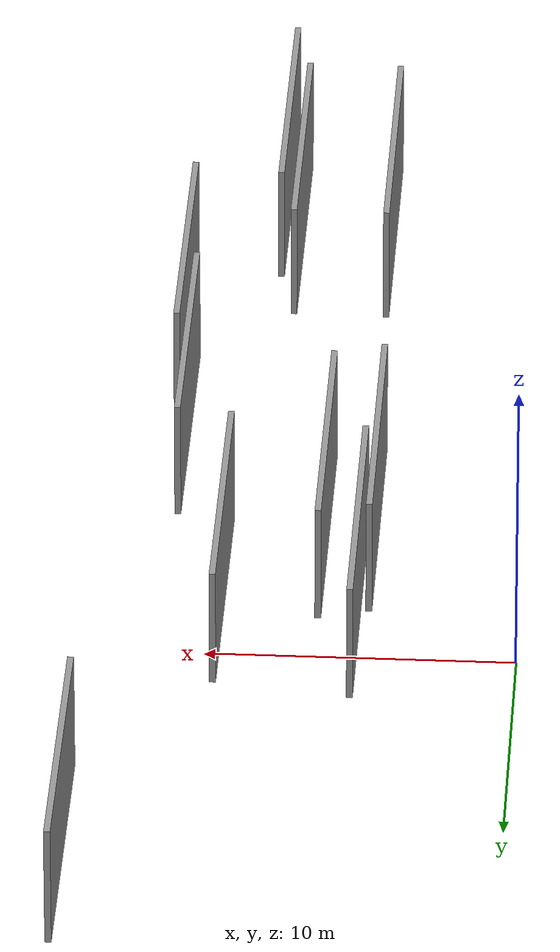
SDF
<sdf version="1.6">
 <world name="default">
  <scene>
   <sky><clouds><speed>12</speed></clouds></sky>
   <ambient>0.4 0.4 0.4 1</ambient>
   <background>0.7 0.7 0.7 1</background>
   <shadows>1</shadows>
  </scene>
  <gravity>0 0 -9.8066</gravity>
  <magnetic_field>6e-06 2.3e-05 -4.2e-05</magnetic_field>
  <physics default="0" name="default_physics" type="ode">
   <ode>
    <solver>
     <type>quick</type>
     <iters>10</iters>
     <sor>1.0</sor>
     <use_dynamic_moi_rescaling>0</use_dynamic_moi_rescaling>
    </solver>
    <constraints>
     <cfm>0</cfm>
     <erp>0.2</erp>
     <contact_max_correcting_vel>100</contact_max_correcting_vel>
     <contact_surface_layer>0.001</contact_surface_layer>
    </constraints>
   </ode>
   <max_step_size>0.004</max_step_size>
   <real_time_factor>1</real_time_factor>
   <real_time_update_rate>250</real_time_update_rate>
  </physics>
  <light name="sun" type="directional">
   <pose>0 0 10 0 0 0</pose>
   <diffuse>0.8 0.8 0.8 1</diffuse>
   <specular>0.2 0.2 0.2 1</specular>
   <attenuation>
    <range>1000</range>
    <constant>0.9</constant>
    <linear>0.01</linear>
    <quadratic>0.001</quadratic>
   </attenuation>
   <direction>-0.5 0.1 -0.9</direction>
  </light>
  <model name="grey_wall_1">
   <static>1</static>
   <pose>9.3770 0.6486 2.5 0.000000 0.000000 1.570796</pose>
   <link name="link">
    <pose>0 0 2.00 0 0 0</pose>
    <collision name="collision"><geometry><box><size>10.00 0.2 4.00</size></box></geometry></collision>
    <visual name="visual">
     <cast_shadows>0</cast_shadows>
     <geometry><box><size>10.00 0.2 4.00</size></box></geometry>
     <material>
      <script>
       <uri>model://grey_wall/materials/scripts</uri>
       <uri>model://grey_wall/materials/textures</uri>
       <name>vrc/grey_wall</name>
      </script>
     </material>
    </visual>
   </link>
  </model>
  <model name="grey_wall_2">
   <static>1</static>
   <pose>6.2705 -3.3775 2.5 0.000000 0.000000 1.570796</pose>
   <link name="link">
    <pose>0 0 2.00 0 0 0</pose>
    <collision name="collision"><geometry><box><size>10.00 0.2 4.00</size></box></geometry></collision>
    <visual name="visual">
     <cast_shadows>0</cast_shadows>
     <geometry><box><size>10.00 0.2 4.00</size></box></geometry>
     <material>
      <script>
       <uri>model://grey_wall/materials/scripts</uri>
       <uri>model://grey_wall/materials/textures</uri>
       <name>vrc/grey_wall</name>
      </script>
     </material>
    </visual>
   </link>
  </model>
  <model name="grey_wall_3">
   <static>1</static>
   <pose>5.0190 1.3097 2.5 0.000000 0.000000 1.570796</pose>
   <link name="link">
    <pose>0 0 2.00 0 0 0</pose>
    <collision name="collision"><geometry><box><size>10.00 0.2 4.00</size></box></geometry></collision>
    <visual name="visual">
     <cast_shadows>0</cast_shadows>
     <geometry><box><size>10.00 0.2 4.00</size></box></geometry>
     <material>
      <script>
       <uri>model://grey_wall/materials/scripts</uri>
       <uri>model://grey_wall/materials/textures</uri>
       <name>vrc/grey_wall</name>
      </script>
     </material>
    </visual>
   </link>
  </model>
  <model name="grey_wall_4">
   <static>1</static>
   <pose>8.6531 -24.9220 2.5 0.000000 0.000000 1.570796</pose>
   <link name="link">
    <pose>0 0 2.00 0 0 0</pose>
    <collision name="collision"><geometry><box><size>10.00 0.2 4.00</size></box></geometry></collision>
    <visual name="visual">
     <cast_shadows>0</cast_shadows>
     <geometry><box><size>10.00 0.2 4.00</size></box></geometry>
     <material>
      <script>
       <uri>model://grey_wall/materials/scripts</uri>
       <uri>model://grey_wall/materials/textures</uri>
       <name>vrc/grey_wall</name>
      </script>
     </material>
    </visual>
   </link>
  </model>
  <model name="grey_wall_5">
   <static>1</static>
   <pose>8.1005 -22.4797 2.5 0.000000 0.000000 1.570796</pose>
   <link name="link">
    <pose>0 0 2.00 0 0 0</pose>
    <collision name="collision"><geometry><box><size>10.00 0.2 4.00</size></box></geometry></collision>
    <visual name="visual">
     <cast_shadows>0</cast_shadows>
     <geometry><box><size>10.00 0.2 4.00</size></box></geometry>
     <material>
      <script>
       <uri>model://grey_wall/materials/scripts</uri>
       <uri>model://grey_wall/materials/textures</uri>
       <name>vrc/grey_wall</name>
      </script>
     </material>
    </visual>
   </link>
  </model>
  <model name="grey_wall_6">
   <static>1</static>
   <pose>11.5396 -15.4896 2.5 0.000000 0.000000 1.570796</pose>
   <link name="link">
    <pose>0 0 2.00 0 0 0</pose>
    <collision name="collision"><geometry><box><size>10.00 0.2 4.00</size></box></geometry></collision>
    <visual name="visual">
     <cast_shadows>0</cast_shadows>
     <geometry><box><size>10.00 0.2 4.00</size></box></geometry>
     <material>
      <script>
       <uri>model://grey_wall/materials/scripts</uri>
       <uri>model://grey_wall/materials/textures</uri>
       <name>vrc/grey_wall</name>
      </script>
     </material>
    </visual>
   </link>
  </model>
  <model name="grey_wall_7">
   <static>1</static>
   <pose>11.1293 -9.4914 2.5 0.000000 0.000000 1.570796</pose>
   <link name="link">
    <pose>0 0 2.00 0 0 0</pose>
    <collision name="collision"><geometry><box><size>10.00 0.2 4.00</size></box></geometry></collision>
    <visual name="visual">
     <cast_shadows>0</cast_shadows>
     <geometry><box><size>10.00 0.2 4.00</size></box></geometry>
     <material>
      <script>
       <uri>model://grey_wall/materials/scripts</uri>
       <uri>model://grey_wall/materials/textures</uri>
       <name>vrc/grey_wall</name>
      </script>
     </material>
    </visual>
   </link>
  </model>
  <model name="grey_wall_8">
   <static>1</static>
   <pose>13.4509 15.7700 2.5 0.000000 0.000000 1.570796</pose>
   <link name="link">
    <pose>0 0 2.00 0 0 0</pose>
    <collision name="collision"><geometry><box><size>10.00 0.2 4.00</size></box></geometry></collision>
    <visual name="visual">
     <cast_shadows>0</cast_shadows>
     <geometry><box><size>10.00 0.2 4.00</size></box></geometry>
     <material>
      <script>
       <uri>model://grey_wall/materials/scripts</uri>
       <uri>model://grey_wall/materials/textures</uri>
       <name>vrc/grey_wall</name>
      </script>
     </material>
    </visual>
   </link>
  </model>
  <model name="grey_wall_9">
   <static>1</static>
   <pose>4.6679 -3.8646 2.5 0.000000 0.000000 1.570796</pose>
   <link name="link">
    <pose>0 0 2.00 0 0 0</pose>
    <collision name="collision"><geometry><box><size>10.00 0.2 4.00</size></box></geometry></collision>
    <visual name="visual">
     <cast_shadows>0</cast_shadows>
     <geometry><box><size>10.00 0.2 4.00</size></box></geometry>
     <material>
      <script>
       <uri>model://grey_wall/materials/scripts</uri>
       <uri>model://grey_wall/materials/textures</uri>
       <name>vrc/grey_wall</name>
      </script>
     </material>
    </visual>
   </link>
  </model>
  <model name="grey_wall_10">
   <static>1</static>
   <pose>5.0348 -22.4275 2.5 0.000000 0.000000 1.570796</pose>
   <link name="link">
    <pose>0 0 2.00 0 0 0</pose>
    <collision name="collision"><geometry><box><size>10.00 0.2 4.00</size></box></geometry></collision>
    <visual name="visual">
     <cast_shadows>0</cast_shadows>
     <geometry><box><size>10.00 0.2 4.00</size></box></geometry>
     <material>
      <script>
       <uri>model://grey_wall/materials/scripts</uri>
       <uri>model://grey_wall/materials/textures</uri>
       <name>vrc/grey_wall</name>
      </script>
     </material>
    </visual>
   </link>
  </model>
 </world>
</sdf>
